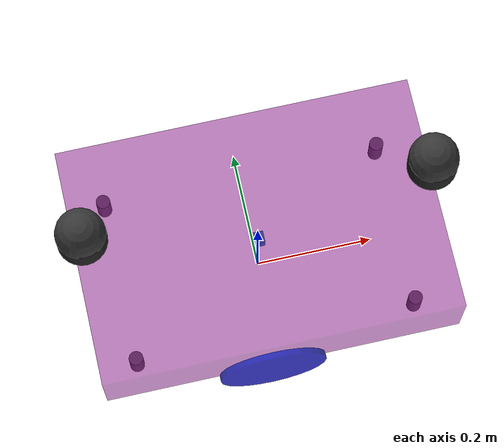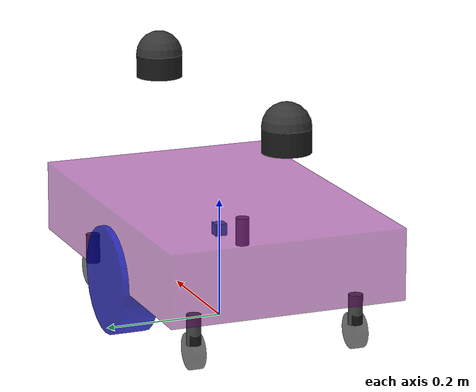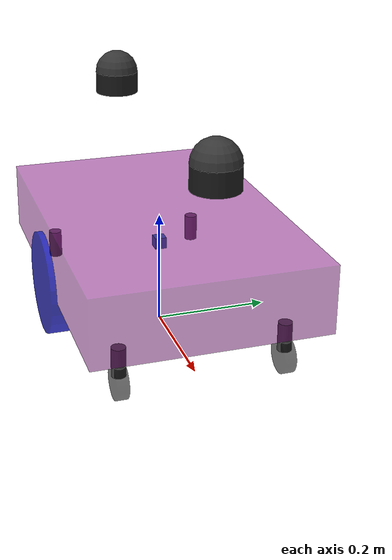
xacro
<?xml version="1.0"?>
<robot name="$(arg robot_name)"
    xmlns:xacro="http://ros.org/wiki/xacro">

    <!--
    差速底盘 XACRO 总入口 (适配 ROS2 Humble/Jazzy + Gazebo Fortress/Garden)
    传感器：前3D雷达 + 后3D雷达（双Mid-360仿真）+ IMU
    -->

    <xacro:arg name="robot_name" default="zioneerDiffRobot"/>
    <!-- 转为 property 供子文件使用 -->
    <xacro:property name="robot_name" value="$(arg robot_name)"/>

    <!-- 载入核心结构（常量、底盘、轮子） -->
    <xacro:include filename="common_properties.xacro" />
    <xacro:include filename="diff_base.xacro" />
    <xacro:include filename="diff_wheels.xacro" />

    <!-- 仿真：Gazebo 传感器 + ros2_control -->
    <xacro:include filename="sensors_gazebo.xacro" />
    <xacro:include filename="ros2_control_sim.xacro" />

</robot>

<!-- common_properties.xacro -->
<robot xmlns:xacro="http://ros.org/wiki/xacro">

    <!-- 数学常量 -->
    <xacro:property name="M_PI" value="3.1415926535897931" />
    <xacro:property name="PI_2" value="1.570796327" />

    <!-- 底盘尺寸 -->
    <xacro:property name="base_box_x" value="0.6" />
    <xacro:property name="base_box_y" value="0.4" />
    <xacro:property name="base_box_z" value="0.12" />
    <xacro:property name="base_mass" value="50.0" />
    <xacro:property name="base_offset_z" value="0.15" />

    <!-- 轮子参数（直径18cm=半径9cm，可装电机转子） -->
    <xacro:property name="wheel_radius" value="0.09" />
    <xacro:property name="wheel_width" value="0.06" />
    <xacro:property name="wheel_mass" value="0.5" />

    <!-- 轮子位置 (相对于 base_link，轮心在底盘底部边缘) -->
    <xacro:property name="wheel_x" value="-0.02" />
    <xacro:property name="wheel_y" value="0.18" />
    <xacro:property name="wheel_z" value="-0.06" />

    <!-- 差速运动学参数 -->
    <xacro:property name="wheel_separation" value="0.36" />
    <xacro:property name="wheel_diameter" value="0.18" />

    <!-- 脚轮参数（比动力轮小，z略高于地面防止动力轮悬空） -->
    <xacro:property name="caster_radius" value="0.03" />
    <xacro:property name="caster_width" value="0.02" />
    <xacro:property name="caster_mass" value="0.05" />

    <!-- 颜色定义 -->
    <material name="purple">
        <color rgba="0.5 0.0 0.5 0.5" />
    </material>
    <material name="dark_red">
        <color rgba="0.8 0.0 0.0 1.0" />
    </material>
    <material name="blue">
        <color rgba="0.0 0.0 0.7 0.8" />
    </material>
    <material name="black">
        <color rgba="0.0 0.0 0.0 0.6" />
    </material>
    <material name="brown">
        <color rgba="0.6 0.3 0.1 1.0" />
    </material>
    <material name="lidar_base">
        <color rgba="0.12 0.12 0.12 1.0" />
    </material>
    <material name="lidar_dome">
        <color rgba="0.22 0.22 0.22 1.0" />
    </material>

    <!-- 惯性宏 -->
    <xacro:macro name="box_inertia" params="m x y z">
        <inertia ixx="${m*(y*y+z*z)/12}" ixy="0" ixz="0"
            iyy="${m*(x*x+z*z)/12}" iyz="0"
            izz="${m*(x*x+y*y)/12}" />
    </xacro:macro>

    <xacro:macro name="cylinder_inertia" params="m r l">
        <inertia ixx="${m*(3*r*r+l*l)/12}" ixy="0" ixz="0"
            iyy="${m*(3*r*r+l*l)/12}" iyz="0"
            izz="${m*r*r/2}" />
    </xacro:macro>

    <xacro:macro name="sphere_inertia" params="m r">
        <inertia ixx="${0.4*m*r*r}" ixy="0" ixz="0"
            iyy="${0.4*m*r*r}" iyz="0"
            izz="${0.4*m*r*r}" />
    </xacro:macro>

</robot>

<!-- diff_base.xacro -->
<robot xmlns:xacro="http://ros.org/wiki/xacro">

    <!-- base_footprint -->
    <link name="base_footprint" />

    <joint name="base_joint" type="fixed">
        <parent link="base_footprint" />
        <child link="base_link" />
        <origin xyz="0 0 ${base_offset_z}" rpy="0 0 0" />
    </joint>

    <!-- base_link -->
    <link name="base_link">
        <visual>
            <origin xyz="0 0 0" rpy="0 0 0" />
            <geometry>
                <box size="${base_box_x} ${base_box_y} ${base_box_z}" />
            </geometry>
            <material name="purple" />
        </visual>
        <collision>
            <origin xyz="0 0 0" rpy="0 0 0" />
            <geometry>
                <box size="${base_box_x} ${base_box_y} ${base_box_z}" />
            </geometry>
        </collision>
        <inertial>
            <mass value="${base_mass}" />
            <xacro:box_inertia m="${base_mass}" x="${base_box_x}" y="${base_box_y}" z="${base_box_z}" />
        </inertial>
    </link>

    <gazebo reference="base_link">
        <material>Gazebo/Orange</material>
    </gazebo>

    <!-- ==================== 前3D雷达 (Mid-360 仿真) ==================== -->
    <link name="front_lidar_link">
        <inertial>
            <origin xyz="0 0 0" rpy="0 0 0" />
            <mass value="0.2" />
            <inertia ixx="0.001" ixy="0.0" ixz="0.0" iyy="0.001" iyz="0.0" izz="0.001" />
        </inertial>
        <!-- 半球穹顶雷达外形：底座圆柱 + 球体(下半埋入底座，只露上半球)，仿 Mid-360 -->
        <visual>
            <origin xyz="0 0 0.02" rpy="0 0 0" />
            <geometry>
                <cylinder radius="0.04" length="0.04" />
            </geometry>
            <material name="lidar_base" />
        </visual>
        <visual>
            <origin xyz="0 0 0.04" rpy="0 0 0" />
            <geometry>
                <sphere radius="0.04" />
            </geometry>
            <material name="lidar_dome" />
        </visual>
    </link>

    <joint name="front_lidar_joint" type="fixed">
        <parent link="base_link" />
        <child link="front_lidar_link" />
        <origin xyz="0.28 0 0.20" rpy="0 0 0" />
    </joint>

    <!-- ==================== 后3D雷达 (Mid-360 仿真) ==================== -->
    <link name="rear_lidar_link">
        <inertial>
            <origin xyz="0 0 0" rpy="0 0 0" />
            <mass value="0.2" />
            <inertia ixx="0.001" ixy="0.0" ixz="0.0" iyy="0.001" iyz="0.0" izz="0.001" />
        </inertial>
        <visual>
            <origin xyz="0 0 0.02" rpy="0 0 0" />
            <geometry>
                <cylinder radius="0.04" length="0.04" />
            </geometry>
            <material name="lidar_base" />
        </visual>
        <visual>
            <origin xyz="0 0 0.04" rpy="0 0 0" />
            <geometry>
                <sphere radius="0.04" />
            </geometry>
            <material name="lidar_dome" />
        </visual>
    </link>

    <joint name="rear_lidar_joint" type="fixed">
        <parent link="base_link" />
        <child link="rear_lidar_link" />
        <origin xyz="-0.28 0 0.20" rpy="0 0 3.1416" />
    </joint>

    <!-- ==================== IMU ==================== -->
    <link name="imu_link">
        <visual>
            <origin xyz="0 0 0" rpy="0 0 0" />
            <geometry>
                <box size="0.02 0.02 0.02" />
            </geometry>
        </visual>
        <collision>
            <origin xyz="0 0 0" rpy="0 0 0" />
            <geometry>
                <box size="0.02 0.02 0.02" />
            </geometry>
        </collision>
        <inertial>
            <mass value="0.1" />
            <xacro:box_inertia m="0.1" x="0.02" y="0.02" z="0.02" />
        </inertial>
    </link>

    <joint name="imu_joint" type="fixed">
        <origin xyz="0 0 0" rpy="0 0 0" />
        <parent link="base_link" />
        <child link="imu_link" />
    </joint>

</robot>

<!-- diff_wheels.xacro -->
<robot xmlns:xacro="http://ros.org/wiki/xacro">

    <!-- ==================== 左轮 ==================== -->
    <link name="left_wheel_link">
        <visual>
            <origin xyz="0 0 0" rpy="${PI_2} 0 0" />
            <geometry>
                <cylinder length="${wheel_width}" radius="${wheel_radius}" />
            </geometry>
            <material name="blue" />
        </visual>
        <collision>
            <origin xyz="0 0 0" rpy="${PI_2} 0 0" />
            <geometry>
                <cylinder length="${wheel_width}" radius="${wheel_radius}" />
            </geometry>
        </collision>
        <inertial>
            <mass value="${wheel_mass}" />
            <xacro:cylinder_inertia m="${wheel_mass}" r="${wheel_radius}" l="${wheel_width}" />
        </inertial>
    </link>

    <joint name="left_wheel_joint" type="continuous">
        <parent link="base_link" />
        <child link="left_wheel_link" />
        <origin xyz="${wheel_x} ${wheel_y} ${wheel_z}" />
        <axis xyz="0 1 0" />
    </joint>

    <!-- ==================== 右轮 ==================== -->
    <link name="right_wheel_link">
        <visual>
            <origin xyz="0 0 0" rpy="${PI_2} 0 0" />
            <geometry>
                <cylinder length="${wheel_width}" radius="${wheel_radius}" />
            </geometry>
            <material name="blue" />
        </visual>
        <collision>
            <origin xyz="0 0 0" rpy="${PI_2} 0 0" />
            <geometry>
                <cylinder length="${wheel_width}" radius="${wheel_radius}" />
            </geometry>
        </collision>
        <inertial>
            <mass value="${wheel_mass}" />
            <xacro:cylinder_inertia m="${wheel_mass}" r="${wheel_radius}" l="${wheel_width}" />
        </inertial>
    </link>

    <joint name="right_wheel_joint" type="continuous">
        <parent link="base_link" />
        <child link="right_wheel_link" />
        <origin xyz="${wheel_x} ${-wheel_y} ${wheel_z}" />
        <axis xyz="0 1 0" />
    </joint>

    <!-- ==================== 脚轮宏（圆柱形，黑色，含支架） ==================== -->
    <xacro:macro name="caster_wheel" params="prefix x y z">
        <!-- 支架：连接底盘底部到万向轮 -->
        <link name="${prefix}_bracket_link">
            <visual>
                <origin xyz="0 0 0" rpy="0 0 0" />
                <geometry>
                    <cylinder length="0.05" radius="0.012" />
                </geometry>
                <material name="dark_grey">
                    <color rgba="0.3 0.3 0.3 1.0" />
                </material>
            </visual>
            <collision>
                <origin xyz="0 0 0" rpy="0 0 0" />
                <geometry>
                    <cylinder length="0.05" radius="0.012" />
                </geometry>
            </collision>
            <inertial>
                <mass value="0.05" />
                <xacro:cylinder_inertia m="0.05" r="0.012" l="0.05" />
            </inertial>
        </link>

        <joint name="${prefix}_bracket_joint" type="fixed">
            <parent link="base_link" />
            <child link="${prefix}_bracket_link" />
            <origin xyz="${x} ${y} -0.085" />
        </joint>

        <!-- 万向轮 -->
        <link name="${prefix}_link">
            <visual>
                <origin xyz="0 0 0" rpy="${PI_2} 0 0" />
                <geometry>
                    <cylinder length="${caster_width}" radius="${caster_radius}" />
                </geometry>
                <material name="black" />
            </visual>
            <collision>
                <origin xyz="0 0 0" rpy="${PI_2} 0 0" />
                <geometry>
                    <cylinder length="${caster_width}" radius="${caster_radius}" />
                </geometry>
            </collision>
            <inertial>
                <mass value="${caster_mass}" />
                <xacro:cylinder_inertia m="${caster_mass}" r="${caster_radius}" l="${caster_width}" />
            </inertial>
        </link>

        <joint name="${prefix}_joint" type="fixed">
            <parent link="base_link" />
            <child link="${prefix}_link" />
            <origin xyz="${x} ${y} ${z}" />
        </joint>
    </xacro:macro>

    <!-- 四个脚轮：z=-0.1205，底部低于地面0.5mm预紧，防止机器人两点支撑翘起1.1° -->
    <xacro:caster_wheel prefix="caster_front_right" x="0.24" y="0.14" z="-0.1205" />
    <xacro:caster_wheel prefix="caster_front_left"  x="0.24" y="-0.14" z="-0.1205" />
    <xacro:caster_wheel prefix="caster_rear_right"  x="-0.24" y="0.14" z="-0.1205" />
    <xacro:caster_wheel prefix="caster_rear_left"   x="-0.24" y="-0.14" z="-0.1205" />

</robot>
